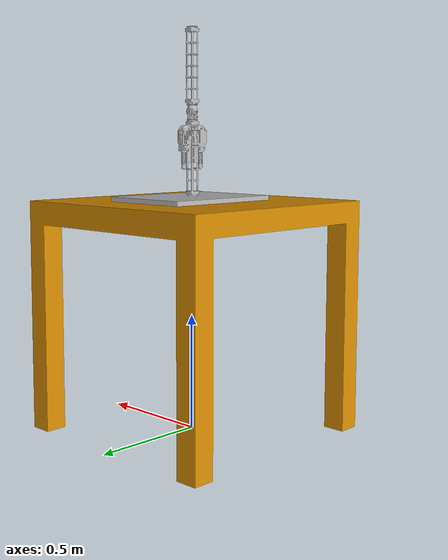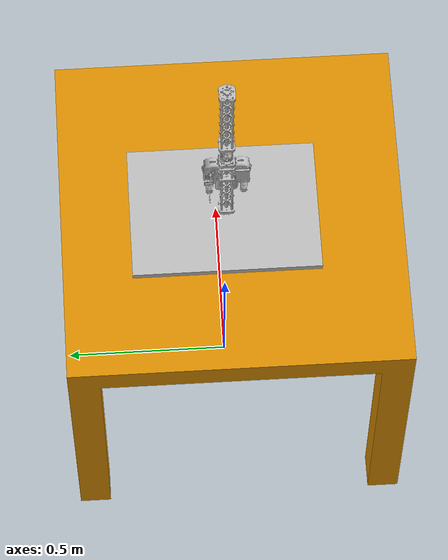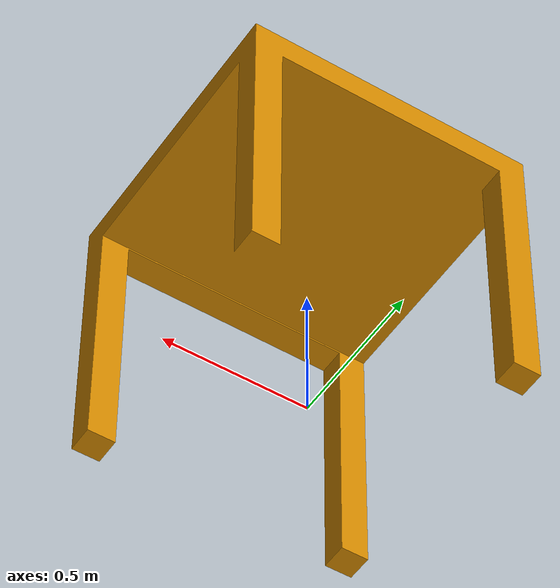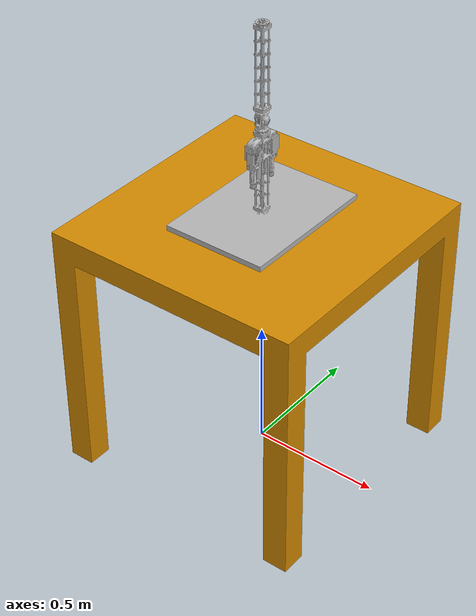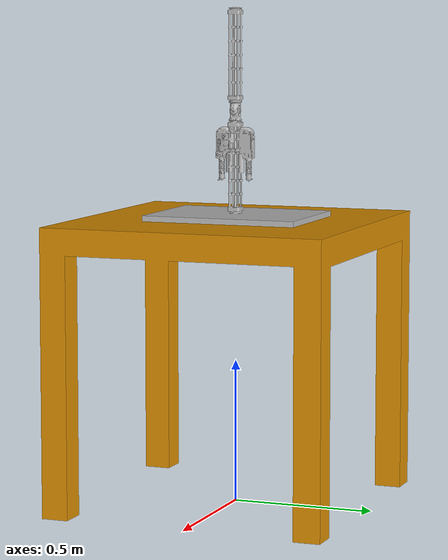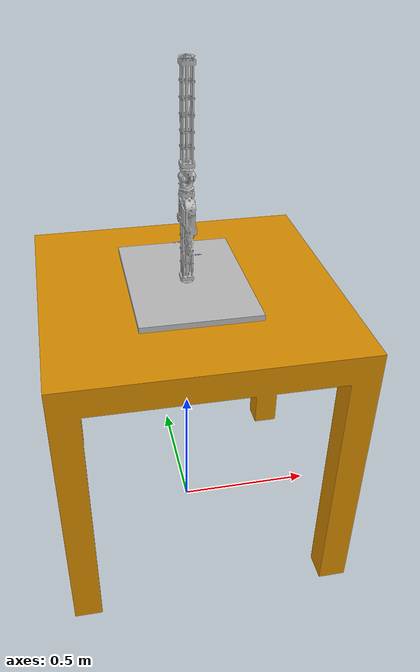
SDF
<?xml version="1.0" ?>
<sdf version="1.5">
	<model name="myoarm_small">
		<muscles>model://myoarm_small/muscles.osim</muscles>
		<link name="table">
			<pose>0.0 0.0 0.0 1.5707963705062866 -0.0 0.0</pose>
			<inertial>
				<mass>10.0</mass>
				<pose>0.0 0.0 0.0 -1.5707963705062866 -0.0 0.0</pose>
				<inertia>
					<ixx>1.0</ixx>
					<ixy>0.0</ixy>
					<ixz>0.0</ixz>
					<iyy>1.0</iyy>
					<iyz>0.0</iyz>
					<izz>1.0</izz>
				</inertia>
			</inertial>
			<visual name="VIS_table">
				<pose>0.0 0.498616099357605 0.017666349187493324 -1.5707963705062866 -0.0 0.0</pose>
				<pose>0.0 0.0 0.0 -1.5707963705062866 -0.0 0.0</pose>
				<geometry>
					<mesh>
						<uri>model://myoarm_small/meshes/visual/VIS_table.dae</uri>
						<scale>1.0 1.0 1.0</scale>
					</mesh>
				</geometry>
			</visual>
		</link>
		<link name="base">
			<pose>0.0 -5.66975081794e-06 0.889999985695 1.5707963705062866 -0.0 0.0</pose>
			<inertial>
				<mass>10000.0</mass>
				<pose>0.0 -0.8899999856948853 -5.630847226711921e-06 -1.5707963705062866 -0.0 0.0</pose>
				<inertia>
					<ixx>1.0</ixx>
					<ixy>0.0</ixy>
					<ixz>0.0</ixz>
					<iyy>1.0</iyy>
					<iyz>0.0</iyz>
					<izz>1.0</izz>
				</inertia>
			</inertial>
			<visual name="VIS_base">
				<pose>0.0 0.10937470197677612 0.0027973027899861336 -6.245005191142863e-14 -0.0 0.0</pose>
				<geometry>
					<mesh>
						<uri>model://myoarm_small/meshes/visual/VIS_base.dae</uri>
						<scale>0.0009999999310821295 0.0009999999310821295 0.0009999999310821295</scale>
					</mesh>
				</geometry>
			</visual>
			<visual name="VIS_COL_base_1">
				<pose>0.0 0.10937470197677612 0.0027973027899861336 -6.245005191142863e-14 -0.0 0.0</pose>
				<pose>0.0 -0.8899999856948853 -5.630847226711921e-06 -1.5707963705062866 -0.0 0.0</pose>
				<geometry>
					<mesh>
						<uri>model://myoarm_small/meshes/visual/VIS_COL_base_1.dae</uri>
						<scale>0.0009999999310821295 0.0009999999310821295 0.0009999999310821295</scale>
					</mesh>
				</geometry>
			</visual>
		</link>
		<link name="arm">
			<pose>0.0 -0.00200569104584 1.37499999991 1.5707963705062866 -0.0 0.0</pose>
			<inertial>
				<mass>1.0</mass>
				<pose>0.0 -1.377000093460083 -8.67983908392489e-06 -1.5707963705062866 -0.0 0.0</pose>
				<inertia>
					<ixx>1.0</ixx>
					<ixy>0.0</ixy>
					<ixz>0.0</ixz>
					<iyy>1.0</iyy>
					<iyz>0.0</iyz>
					<izz>1.0</izz>
				</inertia>
			</inertial>
			<visual name="VIS_arm">
				<pose>0.000904510379768908 0.15434670448303223 0.00041864102240651846 -1.189777720789209e-10 -0.0 0.0</pose>
				<pose>0.0 -1.377000093460083 -8.67983908392489e-06 -1.5707963705062866 -0.0 0.0</pose>
				<geometry>
					<mesh>
						<uri>model://myoarm_small/meshes/visual/VIS_arm.dae</uri>
						<scale>0.0009999999310821295 0.0009999998146668077 0.0009999999310821295</scale>
					</mesh>
				</geometry>
			</visual>
		</link>
		<joint name="table" type="fixed">
			<parent>world</parent>
			<child>table</child>
			<axis>
				<xyz>1.0 0.0 0.0</xyz>
				<use_parent_model_frame>true</use_parent_model_frame>
				<limit/>
			</axis>
		</joint>
		<joint name="base" type="fixed">
			<parent>table</parent>
			<child>base</child>
			<axis>
				<xyz>1.0 0.0 0.0</xyz>
				<use_parent_model_frame>true</use_parent_model_frame>
				<limit/>
			</axis>
		</joint>
		<joint name="arm" type="revolute">
			<parent>base</parent>
			<child>arm</child>
			<axis>
				<xyz>1.0 0.0 0.0</xyz>
				<use_parent_model_frame>true</use_parent_model_frame>
				<limit>
					<lower>-1</lower>
					<upper>1</upper>
				</limit>
			</axis>
		</joint>
		<plugin filename="libgazebo_ros_muscle_interface.so" name="muscle_interface_plugin"/>
	</model>
</sdf>
